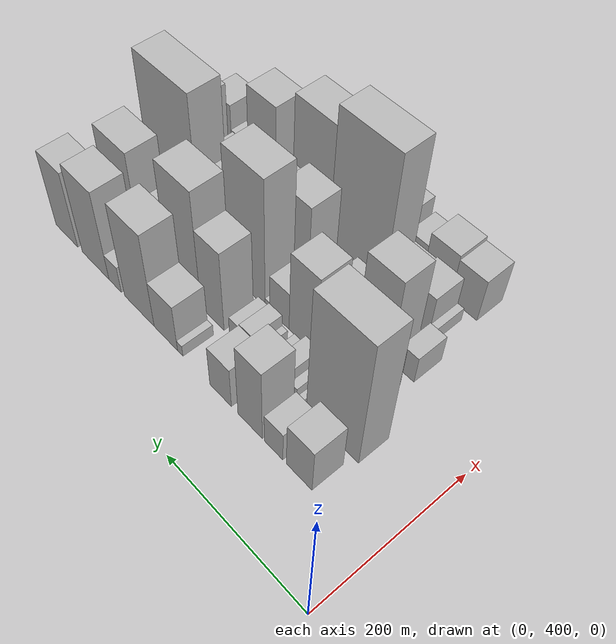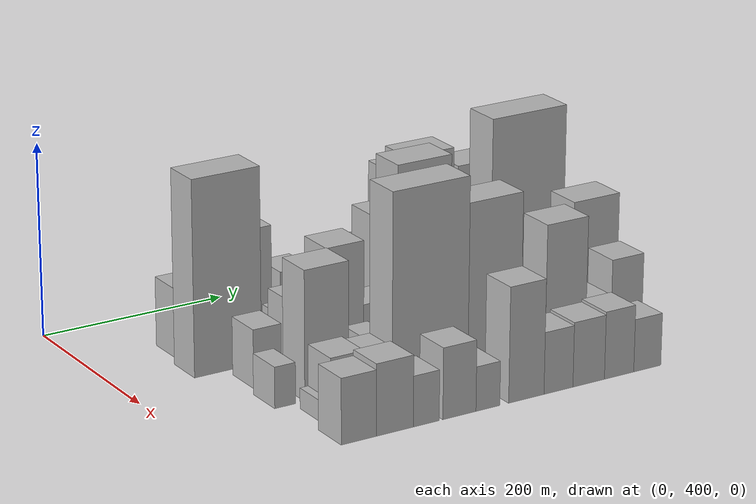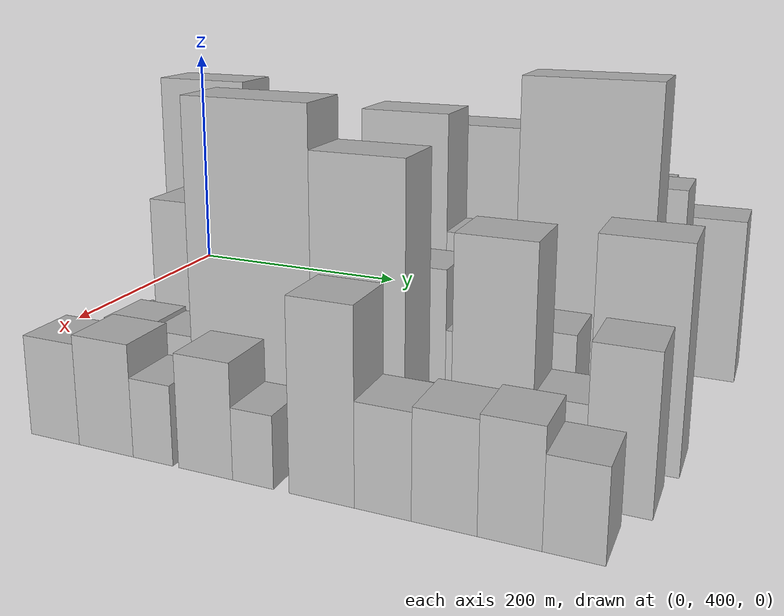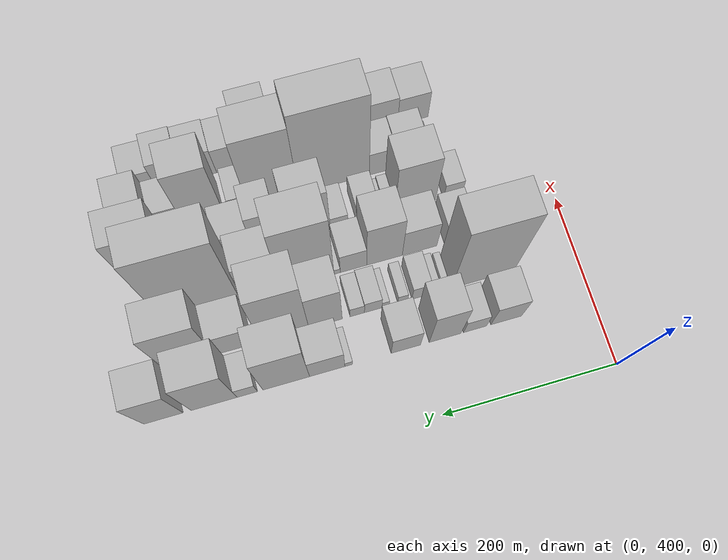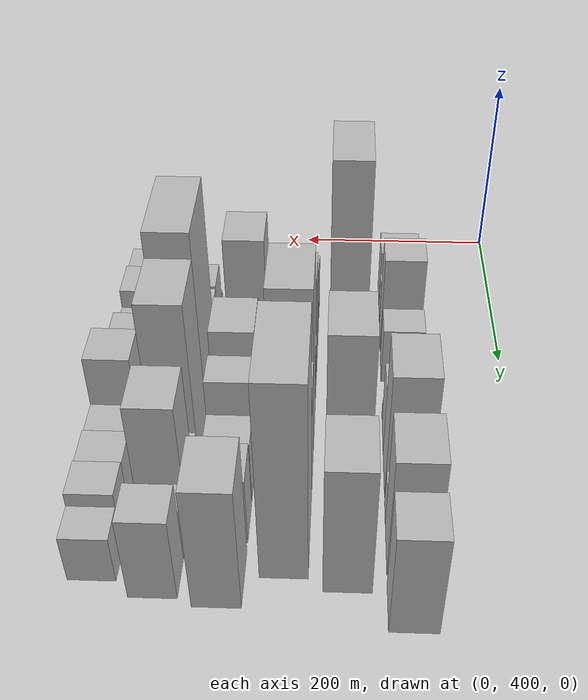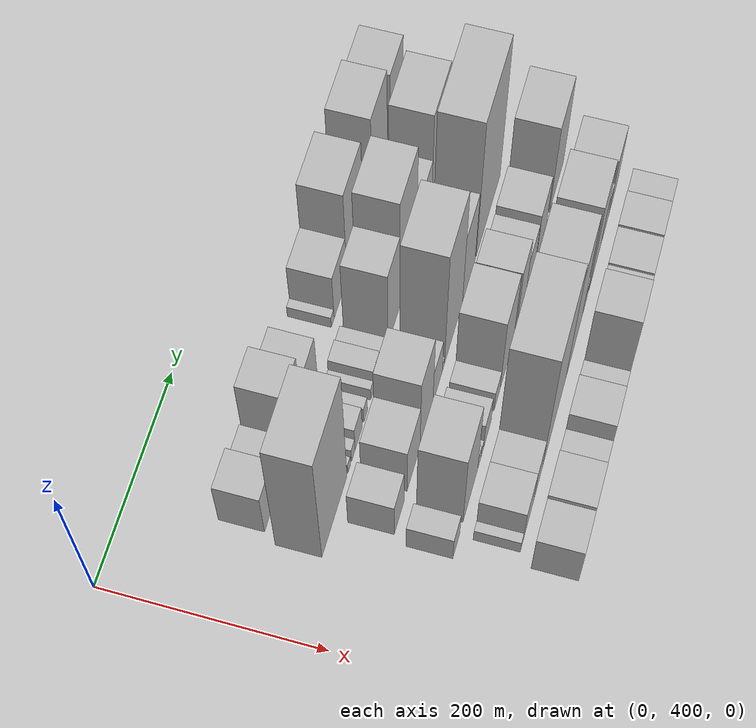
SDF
<sdf version="1.6">
 <world name="default">
  <model name="building_43">
   <static>1</static>
   <pose>100.0000 500.9659 0 0.000000 0.000000 0.000000</pose>
   <link name="link">
    <pose>0 0 36.00 0 0 0</pose>
    <collision name="collision"><geometry><box><size>40.0000 36.1020 72.0000</size></box></geometry></collision>
    <visual name="visual">
     <cast_shadows>0</cast_shadows>
     <geometry><box><size>40.0000 36.1020 72.0000</size></box></geometry>
     <material>
      <script>
       <uri>model://HANNAS_wall/materials/scripts</uri>
       <uri>model://HANNAS_wall/materials/textures</uri>
       <name>vrc/HANNAS_wall</name>
      </script>
     </material>
    </visual>
   </link>
  </model>
  <model name="building_44">
   <static>1</static>
   <pose>100.0000 537.4547 0 0.000000 0.000000 0.000000</pose>
   <link name="link">
    <pose>0 0 24.00 0 0 0</pose>
    <collision name="collision"><geometry><box><size>40.0000 26.8757 48.0000</size></box></geometry></collision>
    <visual name="visual">
     <cast_shadows>0</cast_shadows>
     <geometry><box><size>40.0000 26.8757 48.0000</size></box></geometry>
     <material>
      <script>
       <uri>model://HANNAS_wall/materials/scripts</uri>
       <uri>model://HANNAS_wall/materials/textures</uri>
       <name>vrc/HANNAS_wall</name>
      </script>
     </material>
    </visual>
   </link>
  </model>
  <model name="building_45">
   <static>1</static>
   <pose>100.0000 572.2795 0 0.000000 0.000000 0.000000</pose>
   <link name="link">
    <pose>0 0 58.50 0 0 0</pose>
    <collision name="collision"><geometry><box><size>40.0000 36.7738 117.0000</size></box></geometry></collision>
    <visual name="visual">
     <cast_shadows>0</cast_shadows>
     <geometry><box><size>40.0000 36.7738 117.0000</size></box></geometry>
     <material>
      <script>
       <uri>model://HANNAS_wall/materials/scripts</uri>
       <uri>model://HANNAS_wall/materials/textures</uri>
       <name>vrc/HANNAS_wall</name>
      </script>
     </material>
    </visual>
   </link>
  </model>
  <model name="building_46">
   <static>1</static>
   <pose>100.0000 617.5958 0 0.000000 0.000000 0.000000</pose>
   <link name="link">
    <pose>0 0 33.00 0 0 0</pose>
    <collision name="collision"><geometry><box><size>40.0000 33.8589 66.0000</size></box></geometry></collision>
    <visual name="visual">
     <cast_shadows>0</cast_shadows>
     <geometry><box><size>40.0000 33.8589 66.0000</size></box></geometry>
     <material>
      <script>
       <uri>model://HANNAS_wall/materials/scripts</uri>
       <uri>model://HANNAS_wall/materials/textures</uri>
       <name>vrc/HANNAS_wall</name>
      </script>
     </material>
    </visual>
   </link>
  </model>
  <model name="building_47">
   <static>1</static>
   <pose>100.0000 682.8618 0 0.000000 0.000000 0.000000</pose>
   <link name="link">
    <pose>0 0 9.00 0 0 0</pose>
    <collision name="collision"><geometry><box><size>40.0000 8.8910 18.0000</size></box></geometry></collision>
    <visual name="visual">
     <cast_shadows>0</cast_shadows>
     <geometry><box><size>40.0000 8.8910 18.0000</size></box></geometry>
     <material>
      <script>
       <uri>model://HANNAS_wall/materials/scripts</uri>
       <uri>model://HANNAS_wall/materials/textures</uri>
       <name>vrc/HANNAS_wall</name>
      </script>
     </material>
    </visual>
   </link>
  </model>
  <model name="building_48">
   <static>1</static>
   <pose>100.0000 707.3021 0 0.000000 0.000000 0.000000</pose>
   <link name="link">
    <pose>0 0 37.50 0 0 0</pose>
    <collision name="collision"><geometry><box><size>40.0000 39.9896 75.0000</size></box></geometry></collision>
    <visual name="visual">
     <cast_shadows>0</cast_shadows>
     <geometry><box><size>40.0000 39.9896 75.0000</size></box></geometry>
     <material>
      <script>
       <uri>model://HANNAS_wall/materials/scripts</uri>
       <uri>model://HANNAS_wall/materials/textures</uri>
       <name>vrc/HANNAS_wall</name>
      </script>
     </material>
    </visual>
   </link>
  </model>
  <model name="building_49">
   <static>1</static>
   <pose>100.0000 753.6165 0 0.000000 0.000000 0.000000</pose>
   <link name="link">
    <pose>0 0 73.50 0 0 0</pose>
    <collision name="collision"><geometry><box><size>40.0000 52.6392 147.0000</size></box></geometry></collision>
    <visual name="visual">
     <cast_shadows>0</cast_shadows>
     <geometry><box><size>40.0000 52.6392 147.0000</size></box></geometry>
     <material>
      <script>
       <uri>model://HANNAS_wall/materials/scripts</uri>
       <uri>model://HANNAS_wall/materials/textures</uri>
       <name>vrc/HANNAS_wall</name>
      </script>
     </material>
    </visual>
   </link>
  </model>
  <model name="building_50">
   <static>1</static>
   <pose>100.0000 797.3405 0 0.000000 0.000000 0.000000</pose>
   <link name="link">
    <pose>0 0 21.00 0 0 0</pose>
    <collision name="collision"><geometry><box><size>40.0000 22.8088 42.0000</size></box></geometry></collision>
    <visual name="visual">
     <cast_shadows>0</cast_shadows>
     <geometry><box><size>40.0000 22.8088 42.0000</size></box></geometry>
     <material>
      <script>
       <uri>model://HANNAS_wall/materials/scripts</uri>
       <uri>model://HANNAS_wall/materials/textures</uri>
       <name>vrc/HANNAS_wall</name>
      </script>
     </material>
    </visual>
   </link>
  </model>
  <model name="building_51">
   <static>1</static>
   <pose>100.0000 834.2517 0 0.000000 0.000000 0.000000</pose>
   <link name="link">
    <pose>0 0 69.00 0 0 0</pose>
    <collision name="collision"><geometry><box><size>40.0000 51.0136 138.0000</size></box></geometry></collision>
    <visual name="visual">
     <cast_shadows>0</cast_shadows>
     <geometry><box><size>40.0000 51.0136 138.0000</size></box></geometry>
     <material>
      <script>
       <uri>model://HANNAS_wall/materials/scripts</uri>
       <uri>model://HANNAS_wall/materials/textures</uri>
       <name>vrc/HANNAS_wall</name>
      </script>
     </material>
    </visual>
   </link>
  </model>
  <model name="building_52">
   <static>1</static>
   <pose>100.0000 890.4065 0 0.000000 0.000000 0.000000</pose>
   <link name="link">
    <pose>0 0 58.50 0 0 0</pose>
    <collision name="collision"><geometry><box><size>40.0000 43.2959 117.0000</size></box></geometry></collision>
    <visual name="visual">
     <cast_shadows>0</cast_shadows>
     <geometry><box><size>40.0000 43.2959 117.0000</size></box></geometry>
     <material>
      <script>
       <uri>model://HANNAS_wall/materials/scripts</uri>
       <uri>model://HANNAS_wall/materials/textures</uri>
       <name>vrc/HANNAS_wall</name>
      </script>
     </material>
    </visual>
   </link>
  </model>
  <model name="building_91">
   <static>1</static>
   <pose>152.0000 511.4278 0 0.000000 0.000000 0.000000</pose>
   <link name="link">
    <pose>0 0 100.50 0 0 0</pose>
    <collision name="collision"><geometry><box><size>40.0000 73.9934 201.0000</size></box></geometry></collision>
    <visual name="visual">
     <cast_shadows>0</cast_shadows>
     <geometry><box><size>40.0000 73.9934 201.0000</size></box></geometry>
     <material>
      <script>
       <uri>model://HANNAS_wall/materials/scripts</uri>
       <uri>model://HANNAS_wall/materials/textures</uri>
       <name>vrc/HANNAS_wall</name>
      </script>
     </material>
    </visual>
   </link>
  </model>
  <model name="building_92">
   <static>1</static>
   <pose>152.0000 555.3570 0 0.000000 0.000000 0.000000</pose>
   <link name="link">
    <pose>0 0 9.00 0 0 0</pose>
    <collision name="collision"><geometry><box><size>40.0000 7.8649 18.0000</size></box></geometry></collision>
    <visual name="visual">
     <cast_shadows>0</cast_shadows>
     <geometry><box><size>40.0000 7.8649 18.0000</size></box></geometry>
     <material>
      <script>
       <uri>model://HANNAS_wall/materials/scripts</uri>
       <uri>model://HANNAS_wall/materials/textures</uri>
       <name>vrc/HANNAS_wall</name>
      </script>
     </material>
    </visual>
   </link>
  </model>
  <model name="building_93">
   <static>1</static>
   <pose>152.0000 567.6566 0 0.000000 0.000000 0.000000</pose>
   <link name="link">
    <pose>0 0 12.00 0 0 0</pose>
    <collision name="collision"><geometry><box><size>40.0000 10.7344 24.0000</size></box></geometry></collision>
    <visual name="visual">
     <cast_shadows>0</cast_shadows>
     <geometry><box><size>40.0000 10.7344 24.0000</size></box></geometry>
     <material>
      <script>
       <uri>model://HANNAS_wall/materials/scripts</uri>
       <uri>model://HANNAS_wall/materials/textures</uri>
       <name>vrc/HANNAS_wall</name>
      </script>
     </material>
    </visual>
   </link>
  </model>
  <model name="building_94">
   <static>1</static>
   <pose>152.0000 583.8742 0 0.000000 0.000000 0.000000</pose>
   <link name="link">
    <pose>0 0 21.00 0 0 0</pose>
    <collision name="collision"><geometry><box><size>40.0000 21.7008 42.0000</size></box></geometry></collision>
    <visual name="visual">
     <cast_shadows>0</cast_shadows>
     <geometry><box><size>40.0000 21.7008 42.0000</size></box></geometry>
     <material>
      <script>
       <uri>model://HANNAS_wall/materials/scripts</uri>
       <uri>model://HANNAS_wall/materials/textures</uri>
       <name>vrc/HANNAS_wall</name>
      </script>
     </material>
    </visual>
   </link>
  </model>
  <model name="building_95">
   <static>1</static>
   <pose>152.0000 605.4654 0 0.000000 0.000000 0.000000</pose>
   <link name="link">
    <pose>0 0 13.50 0 0 0</pose>
    <collision name="collision"><geometry><box><size>40.0000 11.4816 27.0000</size></box></geometry></collision>
    <visual name="visual">
     <cast_shadows>0</cast_shadows>
     <geometry><box><size>40.0000 11.4816 27.0000</size></box></geometry>
     <material>
      <script>
       <uri>model://HANNAS_wall/materials/scripts</uri>
       <uri>model://HANNAS_wall/materials/textures</uri>
       <name>vrc/HANNAS_wall</name>
      </script>
     </material>
    </visual>
   </link>
  </model>
  <model name="building_96">
   <static>1</static>
   <pose>152.0000 625.4875 0 0.000000 0.000000 0.000000</pose>
   <link name="link">
    <pose>0 0 10.50 0 0 0</pose>
    <collision name="collision"><geometry><box><size>40.0000 8.5626 21.0000</size></box></geometry></collision>
    <visual name="visual">
     <cast_shadows>0</cast_shadows>
     <geometry><box><size>40.0000 8.5626 21.0000</size></box></geometry>
     <material>
      <script>
       <uri>model://HANNAS_wall/materials/scripts</uri>
       <uri>model://HANNAS_wall/materials/textures</uri>
       <name>vrc/HANNAS_wall</name>
      </script>
     </material>
    </visual>
   </link>
  </model>
  <model name="building_97">
   <static>1</static>
   <pose>152.0000 639.8967 0 0.000000 0.000000 0.000000</pose>
   <link name="link">
    <pose>0 0 19.50 0 0 0</pose>
    <collision name="collision"><geometry><box><size>40.0000 20.2559 39.0000</size></box></geometry></collision>
    <visual name="visual">
     <cast_shadows>0</cast_shadows>
     <geometry><box><size>40.0000 20.2559 39.0000</size></box></geometry>
     <material>
      <script>
       <uri>model://HANNAS_wall/materials/scripts</uri>
       <uri>model://HANNAS_wall/materials/textures</uri>
       <name>vrc/HANNAS_wall</name>
      </script>
     </material>
    </visual>
   </link>
  </model>
  <model name="building_98">
   <static>1</static>
   <pose>152.0000 658.3402 0 0.000000 0.000000 0.000000</pose>
   <link name="link">
    <pose>0 0 16.50 0 0 0</pose>
    <collision name="collision"><geometry><box><size>40.0000 16.6312 33.0000</size></box></geometry></collision>
    <visual name="visual">
     <cast_shadows>0</cast_shadows>
     <geometry><box><size>40.0000 16.6312 33.0000</size></box></geometry>
     <material>
      <script>
       <uri>model://HANNAS_wall/materials/scripts</uri>
       <uri>model://HANNAS_wall/materials/textures</uri>
       <name>vrc/HANNAS_wall</name>
      </script>
     </material>
    </visual>
   </link>
  </model>
  <model name="building_99">
   <static>1</static>
   <pose>152.0000 694.8591 0 0.000000 0.000000 0.000000</pose>
   <link name="link">
    <pose>0 0 63.00 0 0 0</pose>
    <collision name="collision"><geometry><box><size>40.0000 38.4065 126.0000</size></box></geometry></collision>
    <visual name="visual">
     <cast_shadows>0</cast_shadows>
     <geometry><box><size>40.0000 38.4065 126.0000</size></box></geometry>
     <material>
      <script>
       <uri>model://HANNAS_wall/materials/scripts</uri>
       <uri>model://HANNAS_wall/materials/textures</uri>
       <name>vrc/HANNAS_wall</name>
      </script>
     </material>
    </visual>
   </link>
  </model>
  <model name="building_100">
   <static>1</static>
   <pose>152.0000 741.5517 0 0.000000 0.000000 0.000000</pose>
   <link name="link">
    <pose>0 0 90.00 0 0 0</pose>
    <collision name="collision"><geometry><box><size>40.0000 54.9788 180.0000</size></box></geometry></collision>
    <visual name="visual">
     <cast_shadows>0</cast_shadows>
     <geometry><box><size>40.0000 54.9788 180.0000</size></box></geometry>
     <material>
      <script>
       <uri>model://HANNAS_wall/materials/scripts</uri>
       <uri>model://HANNAS_wall/materials/textures</uri>
       <name>vrc/HANNAS_wall</name>
      </script>
     </material>
    </visual>
   </link>
  </model>
  <model name="building_101">
   <static>1</static>
   <pose>152.0000 799.6591 0 0.000000 0.000000 0.000000</pose>
   <link name="link">
    <pose>0 0 37.50 0 0 0</pose>
    <collision name="collision"><geometry><box><size>40.0000 43.2359 75.0000</size></box></geometry></collision>
    <visual name="visual">
     <cast_shadows>0</cast_shadows>
     <geometry><box><size>40.0000 43.2359 75.0000</size></box></geometry>
     <material>
      <script>
       <uri>model://HANNAS_wall/materials/scripts</uri>
       <uri>model://HANNAS_wall/materials/textures</uri>
       <name>vrc/HANNAS_wall</name>
      </script>
     </material>
    </visual>
   </link>
  </model>
  <model name="building_102">
   <static>1</static>
   <pose>152.0000 849.3865 0 0.000000 0.000000 0.000000</pose>
   <link name="link">
    <pose>0 0 73.50 0 0 0</pose>
    <collision name="collision"><geometry><box><size>40.0000 56.2190 147.0000</size></box></geometry></collision>
    <visual name="visual">
     <cast_shadows>0</cast_shadows>
     <geometry><box><size>40.0000 56.2190 147.0000</size></box></geometry>
     <material>
      <script>
       <uri>model://HANNAS_wall/materials/scripts</uri>
       <uri>model://HANNAS_wall/materials/textures</uri>
       <name>vrc/HANNAS_wall</name>
      </script>
     </material>
    </visual>
   </link>
  </model>
  <model name="building_141">
   <static>1</static>
   <pose>204.0000 524.8985 0 0.000000 0.000000 0.000000</pose>
   <link name="link">
    <pose>0 0 30.00 0 0 0</pose>
    <collision name="collision"><geometry><box><size>40.0000 30.7688 60.0000</size></box></geometry></collision>
    <visual name="visual">
     <cast_shadows>0</cast_shadows>
     <geometry><box><size>40.0000 30.7688 60.0000</size></box></geometry>
     <material>
      <script>
       <uri>model://HANNAS_wall/materials/scripts</uri>
       <uri>model://HANNAS_wall/materials/textures</uri>
       <name>vrc/HANNAS_wall</name>
      </script>
     </material>
    </visual>
   </link>
  </model>
  <model name="building_142">
   <static>1</static>
   <pose>204.0000 569.8486 0 0.000000 0.000000 0.000000</pose>
   <link name="link">
    <pose>0 0 40.50 0 0 0</pose>
    <collision name="collision"><geometry><box><size>40.0000 41.1313 81.0000</size></box></geometry></collision>
    <visual name="visual">
     <cast_shadows>0</cast_shadows>
     <geometry><box><size>40.0000 41.1313 81.0000</size></box></geometry>
     <material>
      <script>
       <uri>model://HANNAS_wall/materials/scripts</uri>
       <uri>model://HANNAS_wall/materials/textures</uri>
       <name>vrc/HANNAS_wall</name>
      </script>
     </material>
    </visual>
   </link>
  </model>
  <model name="building_143">
   <static>1</static>
   <pose>204.0000 611.4502 0 0.000000 0.000000 0.000000</pose>
   <link name="link">
    <pose>0 0 63.00 0 0 0</pose>
    <collision name="collision"><geometry><box><size>40.0000 42.0719 126.0000</size></box></geometry></collision>
    <visual name="visual">
     <cast_shadows>0</cast_shadows>
     <geometry><box><size>40.0000 42.0719 126.0000</size></box></geometry>
     <material>
      <script>
       <uri>model://HANNAS_wall/materials/scripts</uri>
       <uri>model://HANNAS_wall/materials/textures</uri>
       <name>vrc/HANNAS_wall</name>
      </script>
     </material>
    </visual>
   </link>
  </model>
  <model name="building_144">
   <static>1</static>
   <pose>204.0000 647.9109 0 0.000000 0.000000 0.000000</pose>
   <link name="link">
    <pose>0 0 30.00 0 0 0</pose>
    <collision name="collision"><geometry><box><size>40.0000 30.8495 60.0000</size></box></geometry></collision>
    <visual name="visual">
     <cast_shadows>0</cast_shadows>
     <geometry><box><size>40.0000 30.8495 60.0000</size></box></geometry>
     <material>
      <script>
       <uri>model://HANNAS_wall/materials/scripts</uri>
       <uri>model://HANNAS_wall/materials/textures</uri>
       <name>vrc/HANNAS_wall</name>
      </script>
     </material>
    </visual>
   </link>
  </model>
  <model name="building_145">
   <static>1</static>
   <pose>204.0000 666.9943 0 0.000000 0.000000 0.000000</pose>
   <link name="link">
    <pose>0 0 7.50 0 0 0</pose>
    <collision name="collision"><geometry><box><size>40.0000 7.3175 15.0000</size></box></geometry></collision>
    <visual name="visual">
     <cast_shadows>0</cast_shadows>
     <geometry><box><size>40.0000 7.3175 15.0000</size></box></geometry>
     <material>
      <script>
       <uri>model://HANNAS_wall/materials/scripts</uri>
       <uri>model://HANNAS_wall/materials/textures</uri>
       <name>vrc/HANNAS_wall</name>
      </script>
     </material>
    </visual>
   </link>
  </model>
  <model name="building_146">
   <static>1</static>
   <pose>204.0000 701.2882 0 0.000000 0.000000 0.000000</pose>
   <link name="link">
    <pose>0 0 97.50 0 0 0</pose>
    <collision name="collision"><geometry><box><size>40.0000 61.2704 195.0000</size></box></geometry></collision>
    <visual name="visual">
     <cast_shadows>0</cast_shadows>
     <geometry><box><size>40.0000 61.2704 195.0000</size></box></geometry>
     <material>
      <script>
       <uri>model://HANNAS_wall/materials/scripts</uri>
       <uri>model://HANNAS_wall/materials/textures</uri>
       <name>vrc/HANNAS_wall</name>
      </script>
     </material>
    </visual>
   </link>
  </model>
  <model name="building_147">
   <static>1</static>
   <pose>204.0000 754.1206 0 0.000000 0.000000 0.000000</pose>
   <link name="link">
    <pose>0 0 58.50 0 0 0</pose>
    <collision name="collision"><geometry><box><size>40.0000 44.3943 117.0000</size></box></geometry></collision>
    <visual name="visual">
     <cast_shadows>0</cast_shadows>
     <geometry><box><size>40.0000 44.3943 117.0000</size></box></geometry>
     <material>
      <script>
       <uri>model://HANNAS_wall/materials/scripts</uri>
       <uri>model://HANNAS_wall/materials/textures</uri>
       <name>vrc/HANNAS_wall</name>
      </script>
     </material>
    </visual>
   </link>
  </model>
  <model name="building_148">
   <static>1</static>
   <pose>204.0000 822.5968 0 0.000000 0.000000 0.000000</pose>
   <link name="link">
    <pose>0 0 111.00 0 0 0</pose>
    <collision name="collision"><geometry><box><size>40.0000 86.5582 222.0000</size></box></geometry></collision>
    <visual name="visual">
     <cast_shadows>0</cast_shadows>
     <geometry><box><size>40.0000 86.5582 222.0000</size></box></geometry>
     <material>
      <script>
       <uri>model://HANNAS_wall/materials/scripts</uri>
       <uri>model://HANNAS_wall/materials/textures</uri>
       <name>vrc/HANNAS_wall</name>
      </script>
     </material>
    </visual>
   </link>
  </model>
  <model name="building_186">
   <static>1</static>
   <pose>256.0000 513.5985 0 0.000000 0.000000 0.000000</pose>
   <link name="link">
    <pose>0 0 21.00 0 0 0</pose>
    <collision name="collision"><geometry><box><size>40.0000 22.6300 42.0000</size></box></geometry></collision>
    <visual name="visual">
     <cast_shadows>0</cast_shadows>
     <geometry><box><size>40.0000 22.6300 42.0000</size></box></geometry>
     <material>
      <script>
       <uri>model://HANNAS_wall/materials/scripts</uri>
       <uri>model://HANNAS_wall/materials/textures</uri>
       <name>vrc/HANNAS_wall</name>
      </script>
     </material>
    </visual>
   </link>
  </model>
  <model name="building_187">
   <static>1</static>
   <pose>256.0000 559.2160 0 0.000000 0.000000 0.000000</pose>
   <link name="link">
    <pose>0 0 66.00 0 0 0</pose>
    <collision name="collision"><geometry><box><size>40.0000 48.6050 132.0000</size></box></geometry></collision>
    <visual name="visual">
     <cast_shadows>0</cast_shadows>
     <geometry><box><size>40.0000 48.6050 132.0000</size></box></geometry>
     <material>
      <script>
       <uri>model://HANNAS_wall/materials/scripts</uri>
       <uri>model://HANNAS_wall/materials/textures</uri>
       <name>vrc/HANNAS_wall</name>
      </script>
     </material>
    </visual>
   </link>
  </model>
  <model name="building_188">
   <static>1</static>
   <pose>256.0000 589.5035 0 0.000000 0.000000 0.000000</pose>
   <link name="link">
    <pose>0 0 12.00 0 0 0</pose>
    <collision name="collision"><geometry><box><size>40.0000 11.9699 24.0000</size></box></geometry></collision>
    <visual name="visual">
     <cast_shadows>0</cast_shadows>
     <geometry><box><size>40.0000 11.9699 24.0000</size></box></geometry>
     <material>
      <script>
       <uri>model://HANNAS_wall/materials/scripts</uri>
       <uri>model://HANNAS_wall/materials/textures</uri>
       <name>vrc/HANNAS_wall</name>
      </script>
     </material>
    </visual>
   </link>
  </model>
  <model name="building_189">
   <static>1</static>
   <pose>256.0000 599.4248 0 0.000000 0.000000 0.000000</pose>
   <link name="link">
    <pose>0 0 9.00 0 0 0</pose>
    <collision name="collision"><geometry><box><size>40.0000 7.8727 18.0000</size></box></geometry></collision>
    <visual name="visual">
     <cast_shadows>0</cast_shadows>
     <geometry><box><size>40.0000 7.8727 18.0000</size></box></geometry>
     <material>
      <script>
       <uri>model://HANNAS_wall/materials/scripts</uri>
       <uri>model://HANNAS_wall/materials/textures</uri>
       <name>vrc/HANNAS_wall</name>
      </script>
     </material>
    </visual>
   </link>
  </model>
  <model name="building_190">
   <static>1</static>
   <pose>256.0000 616.3459 0 0.000000 0.000000 0.000000</pose>
   <link name="link">
    <pose>0 0 24.00 0 0 0</pose>
    <collision name="collision"><geometry><box><size>40.0000 25.9695 48.0000</size></box></geometry></collision>
    <visual name="visual">
     <cast_shadows>0</cast_shadows>
     <geometry><box><size>40.0000 25.9695 48.0000</size></box></geometry>
     <material>
      <script>
       <uri>model://HANNAS_wall/materials/scripts</uri>
       <uri>model://HANNAS_wall/materials/textures</uri>
       <name>vrc/HANNAS_wall</name>
      </script>
     </material>
    </visual>
   </link>
  </model>
  <model name="building_191">
   <static>1</static>
   <pose>256.0000 649.8906 0 0.000000 0.000000 0.000000</pose>
   <link name="link">
    <pose>0 0 18.00 0 0 0</pose>
    <collision name="collision"><geometry><box><size>40.0000 21.1199 36.0000</size></box></geometry></collision>
    <visual name="visual">
     <cast_shadows>0</cast_shadows>
     <geometry><box><size>40.0000 21.1199 36.0000</size></box></geometry>
     <material>
      <script>
       <uri>model://HANNAS_wall/materials/scripts</uri>
       <uri>model://HANNAS_wall/materials/textures</uri>
       <name>vrc/HANNAS_wall</name>
      </script>
     </material>
    </visual>
   </link>
  </model>
  <model name="building_192">
   <static>1</static>
   <pose>256.0000 684.0607 0 0.000000 0.000000 0.000000</pose>
   <link name="link">
    <pose>0 0 63.00 0 0 0</pose>
    <collision name="collision"><geometry><box><size>40.0000 47.2203 126.0000</size></box></geometry></collision>
    <visual name="visual">
     <cast_shadows>0</cast_shadows>
     <geometry><box><size>40.0000 47.2203 126.0000</size></box></geometry>
     <material>
      <script>
       <uri>model://HANNAS_wall/materials/scripts</uri>
       <uri>model://HANNAS_wall/materials/textures</uri>
       <name>vrc/HANNAS_wall</name>
      </script>
     </material>
    </visual>
   </link>
  </model>
  <model name="building_193">
   <static>1</static>
   <pose>256.0000 734.2272 0 0.000000 0.000000 0.000000</pose>
   <link name="link">
    <pose>0 0 54.00 0 0 0</pose>
    <collision name="collision"><geometry><box><size>40.0000 33.1126 108.0000</size></box></geometry></collision>
    <visual name="visual">
     <cast_shadows>0</cast_shadows>
     <geometry><box><size>40.0000 33.1126 108.0000</size></box></geometry>
     <material>
      <script>
       <uri>model://HANNAS_wall/materials/scripts</uri>
       <uri>model://HANNAS_wall/materials/textures</uri>
       <name>vrc/HANNAS_wall</name>
      </script>
     </material>
    </visual>
   </link>
  </model>
  <model name="building_194">
   <static>1</static>
   <pose>256.0000 769.3678 0 0.000000 0.000000 0.000000</pose>
   <link name="link">
    <pose>0 0 34.50 0 0 0</pose>
    <collision name="collision"><geometry><box><size>40.0000 37.1687 69.0000</size></box></geometry></collision>
    <visual name="visual">
     <cast_shadows>0</cast_shadows>
     <geometry><box><size>40.0000 37.1687 69.0000</size></box></geometry>
     <material>
      <script>
       <uri>model://HANNAS_wall/materials/scripts</uri>
       <uri>model://HANNAS_wall/materials/textures</uri>
       <name>vrc/HANNAS_wall</name>
      </script>
     </material>
    </visual>
   </link>
  </model>
  <model name="building_195">
   <static>1</static>
   <pose>256.0000 811.4369 0 0.000000 0.000000 0.000000</pose>
   <link name="link">
    <pose>0 0 39.00 0 0 0</pose>
    <collision name="collision"><geometry><box><size>40.0000 40.9695 78.0000</size></box></geometry></collision>
    <visual name="visual">
     <cast_shadows>0</cast_shadows>
     <geometry><box><size>40.0000 40.9695 78.0000</size></box></geometry>
     <material>
      <script>
       <uri>model://HANNAS_wall/materials/scripts</uri>
       <uri>model://HANNAS_wall/materials/textures</uri>
       <name>vrc/HANNAS_wall</name>
      </script>
     </material>
    </visual>
   </link>
  </model>
  <model name="building_196">
   <static>1</static>
   <pose>256.0000 867.8552 0 0.000000 0.000000 0.000000</pose>
   <link name="link">
    <pose>0 0 70.50 0 0 0</pose>
    <collision name="collision"><geometry><box><size>40.0000 53.8672 141.0000</size></box></geometry></collision>
    <visual name="visual">
     <cast_shadows>0</cast_shadows>
     <geometry><box><size>40.0000 53.8672 141.0000</size></box></geometry>
     <material>
      <script>
       <uri>model://HANNAS_wall/materials/scripts</uri>
       <uri>model://HANNAS_wall/materials/textures</uri>
       <name>vrc/HANNAS_wall</name>
      </script>
     </material>
    </visual>
   </link>
  </model>
  <model name="building_241">
   <static>1</static>
   <pose>308.0000 527.1233 0 0.000000 0.000000 0.000000</pose>
   <link name="link">
    <pose>0 0 10.50 0 0 0</pose>
    <collision name="collision"><geometry><box><size>40.0000 9.0381 21.0000</size></box></geometry></collision>
    <visual name="visual">
     <cast_shadows>0</cast_shadows>
     <geometry><box><size>40.0000 9.0381 21.0000</size></box></geometry>
     <material>
      <script>
       <uri>model://HANNAS_wall/materials/scripts</uri>
       <uri>model://HANNAS_wall/materials/textures</uri>
       <name>vrc/HANNAS_wall</name>
      </script>
     </material>
    </visual>
   </link>
  </model>
  <model name="building_242">
   <static>1</static>
   <pose>308.0000 550.0235 0 0.000000 0.000000 0.000000</pose>
   <link name="link">
    <pose>0 0 31.50 0 0 0</pose>
    <collision name="collision"><geometry><box><size>40.0000 36.7624 63.0000</size></box></geometry></collision>
    <visual name="visual">
     <cast_shadows>0</cast_shadows>
     <geometry><box><size>40.0000 36.7624 63.0000</size></box></geometry>
     <material>
      <script>
       <uri>model://HANNAS_wall/materials/scripts</uri>
       <uri>model://HANNAS_wall/materials/textures</uri>
       <name>vrc/HANNAS_wall</name>
      </script>
     </material>
    </visual>
   </link>
  </model>
  <model name="building_243">
   <static>1</static>
   <pose>308.0000 583.7509 0 0.000000 0.000000 0.000000</pose>
   <link name="link">
    <pose>0 0 30.00 0 0 0</pose>
    <collision name="collision"><geometry><box><size>40.0000 30.6923 60.0000</size></box></geometry></collision>
    <visual name="visual">
     <cast_shadows>0</cast_shadows>
     <geometry><box><size>40.0000 30.6923 60.0000</size></box></geometry>
     <material>
      <script>
       <uri>model://HANNAS_wall/materials/scripts</uri>
       <uri>model://HANNAS_wall/materials/textures</uri>
       <name>vrc/HANNAS_wall</name>
      </script>
     </material>
    </visual>
   </link>
  </model>
  <model name="building_244">
   <static>1</static>
   <pose>308.0000 641.5934 0 0.000000 0.000000 0.000000</pose>
   <link name="link">
    <pose>0 0 106.50 0 0 0</pose>
    <collision name="collision"><geometry><box><size>40.0000 84.9926 213.0000</size></box></geometry></collision>
    <visual name="visual">
     <cast_shadows>0</cast_shadows>
     <geometry><box><size>40.0000 84.9926 213.0000</size></box></geometry>
     <material>
      <script>
       <uri>model://HANNAS_wall/materials/scripts</uri>
       <uri>model://HANNAS_wall/materials/textures</uri>
       <name>vrc/HANNAS_wall</name>
      </script>
     </material>
    </visual>
   </link>
  </model>
  <model name="building_245">
   <static>1</static>
   <pose>308.0000 714.2807 0 0.000000 0.000000 0.000000</pose>
   <link name="link">
    <pose>0 0 93.00 0 0 0</pose>
    <collision name="collision"><geometry><box><size>40.0000 60.3820 186.0000</size></box></geometry></collision>
    <visual name="visual">
     <cast_shadows>0</cast_shadows>
     <geometry><box><size>40.0000 60.3820 186.0000</size></box></geometry>
     <material>
      <script>
       <uri>model://HANNAS_wall/materials/scripts</uri>
       <uri>model://HANNAS_wall/materials/textures</uri>
       <name>vrc/HANNAS_wall</name>
      </script>
     </material>
    </visual>
   </link>
  </model>
  <model name="building_246">
   <static>1</static>
   <pose>308.0000 755.2159 0 0.000000 0.000000 0.000000</pose>
   <link name="link">
    <pose>0 0 19.50 0 0 0</pose>
    <collision name="collision"><geometry><box><size>40.0000 21.4885 39.0000</size></box></geometry></collision>
    <visual name="visual">
     <cast_shadows>0</cast_shadows>
     <geometry><box><size>40.0000 21.4885 39.0000</size></box></geometry>
     <material>
      <script>
       <uri>model://HANNAS_wall/materials/scripts</uri>
       <uri>model://HANNAS_wall/materials/textures</uri>
       <name>vrc/HANNAS_wall</name>
      </script>
     </material>
    </visual>
   </link>
  </model>
  <model name="building_247">
   <static>1</static>
   <pose>308.0000 796.7059 0 0.000000 0.000000 0.000000</pose>
   <link name="link">
    <pose>0 0 73.50 0 0 0</pose>
    <collision name="collision"><geometry><box><size>40.0000 47.4915 147.0000</size></box></geometry></collision>
    <visual name="visual">
     <cast_shadows>0</cast_shadows>
     <geometry><box><size>40.0000 47.4915 147.0000</size></box></geometry>
     <material>
      <script>
       <uri>model://HANNAS_wall/materials/scripts</uri>
       <uri>model://HANNAS_wall/materials/textures</uri>
       <name>vrc/HANNAS_wall</name>
      </script>
     </material>
    </visual>
   </link>
  </model>
  <model name="building_248">
   <static>1</static>
   <pose>308.0000 835.4642 0 0.000000 0.000000 0.000000</pose>
   <link name="link">
    <pose>0 0 30.00 0 0 0</pose>
    <collision name="collision"><geometry><box><size>40.0000 30.0252 60.0000</size></box></geometry></collision>
    <visual name="visual">
     <cast_shadows>0</cast_shadows>
     <geometry><box><size>40.0000 30.0252 60.0000</size></box></geometry>
     <material>
      <script>
       <uri>model://HANNAS_wall/materials/scripts</uri>
       <uri>model://HANNAS_wall/materials/textures</uri>
       <name>vrc/HANNAS_wall</name>
      </script>
     </material>
    </visual>
   </link>
  </model>
  <model name="building_249">
   <static>1</static>
   <pose>308.0000 869.1329 0 0.000000 0.000000 0.000000</pose>
   <link name="link">
    <pose>0 0 48.00 0 0 0</pose>
    <collision name="collision"><geometry><box><size>40.0000 37.3121 96.0000</size></box></geometry></collision>
    <visual name="visual">
     <cast_shadows>0</cast_shadows>
     <geometry><box><size>40.0000 37.3121 96.0000</size></box></geometry>
     <material>
      <script>
       <uri>model://HANNAS_wall/materials/scripts</uri>
       <uri>model://HANNAS_wall/materials/textures</uri>
       <name>vrc/HANNAS_wall</name>
      </script>
     </material>
    </visual>
   </link>
  </model>
  <model name="building_291">
   <static>1</static>
   <pose>360.0000 530.2545 0 0.000000 0.000000 0.000000</pose>
   <link name="link">
    <pose>0 0 33.00 0 0 0</pose>
    <collision name="collision"><geometry><box><size>40.0000 37.6896 66.0000</size></box></geometry></collision>
    <visual name="visual">
     <cast_shadows>0</cast_shadows>
     <geometry><box><size>40.0000 37.6896 66.0000</size></box></geometry>
     <material>
      <script>
       <uri>model://HANNAS_wall/materials/scripts</uri>
       <uri>model://HANNAS_wall/materials/textures</uri>
       <name>vrc/HANNAS_wall</name>
      </script>
     </material>
    </visual>
   </link>
  </model>
  <model name="building_292">
   <static>1</static>
   <pose>360.0000 569.3147 0 0.000000 0.000000 0.000000</pose>
   <link name="link">
    <pose>0 0 36.00 0 0 0</pose>
    <collision name="collision"><geometry><box><size>40.0000 40.4309 72.0000</size></box></geometry></collision>
    <visual name="visual">
     <cast_shadows>0</cast_shadows>
     <geometry><box><size>40.0000 40.4309 72.0000</size></box></geometry>
     <material>
      <script>
       <uri>model://HANNAS_wall/materials/scripts</uri>
       <uri>model://HANNAS_wall/materials/textures</uri>
       <name>vrc/HANNAS_wall</name>
      </script>
     </material>
    </visual>
   </link>
  </model>
  <model name="building_293">
   <static>1</static>
   <pose>360.0000 603.7656 0 0.000000 0.000000 0.000000</pose>
   <link name="link">
    <pose>0 0 25.50 0 0 0</pose>
    <collision name="collision"><geometry><box><size>40.0000 28.4710 51.0000</size></box></geometry></collision>
    <visual name="visual">
     <cast_shadows>0</cast_shadows>
     <geometry><box><size>40.0000 28.4710 51.0000</size></box></geometry>
     <material>
      <script>
       <uri>model://HANNAS_wall/materials/scripts</uri>
       <uri>model://HANNAS_wall/materials/textures</uri>
       <name>vrc/HANNAS_wall</name>
      </script>
     </material>
    </visual>
   </link>
  </model>
  <model name="building_294">
   <static>1</static>
   <pose>360.0000 640.4725 0 0.000000 0.000000 0.000000</pose>
   <link name="link">
    <pose>0 0 36.00 0 0 0</pose>
    <collision name="collision"><geometry><box><size>40.0000 36.9429 72.0000</size></box></geometry></collision>
    <visual name="visual">
     <cast_shadows>0</cast_shadows>
     <geometry><box><size>40.0000 36.9429 72.0000</size></box></geometry>
     <material>
      <script>
       <uri>model://HANNAS_wall/materials/scripts</uri>
       <uri>model://HANNAS_wall/materials/textures</uri>
       <name>vrc/HANNAS_wall</name>
      </script>
     </material>
    </visual>
   </link>
  </model>
  <model name="building_295">
   <static>1</static>
   <pose>360.0000 672.3618 0 0.000000 0.000000 0.000000</pose>
   <link name="link">
    <pose>0 0 22.50 0 0 0</pose>
    <collision name="collision"><geometry><box><size>40.0000 26.8357 45.0000</size></box></geometry></collision>
    <visual name="visual">
     <cast_shadows>0</cast_shadows>
     <geometry><box><size>40.0000 26.8357 45.0000</size></box></geometry>
     <material>
      <script>
       <uri>model://HANNAS_wall/materials/scripts</uri>
       <uri>model://HANNAS_wall/materials/textures</uri>
       <name>vrc/HANNAS_wall</name>
      </script>
     </material>
    </visual>
   </link>
  </model>
  <model name="building_296">
   <static>1</static>
   <pose>360.0000 715.9449 0 0.000000 0.000000 0.000000</pose>
   <link name="link">
    <pose>0 0 58.50 0 0 0</pose>
    <collision name="collision"><geometry><box><size>40.0000 40.3304 117.0000</size></box></geometry></collision>
    <visual name="visual">
     <cast_shadows>0</cast_shadows>
     <geometry><box><size>40.0000 40.3304 117.0000</size></box></geometry>
     <material>
      <script>
       <uri>model://HANNAS_wall/materials/scripts</uri>
       <uri>model://HANNAS_wall/materials/textures</uri>
       <name>vrc/HANNAS_wall</name>
      </script>
     </material>
    </visual>
   </link>
  </model>
  <model name="building_297">
   <static>1</static>
   <pose>360.0000 752.8148 0 0.000000 0.000000 0.000000</pose>
   <link name="link">
    <pose>0 0 31.50 0 0 0</pose>
    <collision name="collision"><geometry><box><size>40.0000 33.4095 63.0000</size></box></geometry></collision>
    <visual name="visual">
     <cast_shadows>0</cast_shadows>
     <geometry><box><size>40.0000 33.4095 63.0000</size></box></geometry>
     <material>
      <script>
       <uri>model://HANNAS_wall/materials/scripts</uri>
       <uri>model://HANNAS_wall/materials/textures</uri>
       <name>vrc/HANNAS_wall</name>
      </script>
     </material>
    </visual>
   </link>
  </model>
  <model name="building_298">
   <static>1</static>
   <pose>360.0000 787.9050 0 0.000000 0.000000 0.000000</pose>
   <link name="link">
    <pose>0 0 33.00 0 0 0</pose>
    <collision name="collision"><geometry><box><size>40.0000 36.7709 66.0000</size></box></geometry></collision>
    <visual name="visual">
     <cast_shadows>0</cast_shadows>
     <geometry><box><size>40.0000 36.7709 66.0000</size></box></geometry>
     <material>
      <script>
       <uri>model://HANNAS_wall/materials/scripts</uri>
       <uri>model://HANNAS_wall/materials/textures</uri>
       <name>vrc/HANNAS_wall</name>
      </script>
     </material>
    </visual>
   </link>
  </model>
  <model name="building_299">
   <static>1</static>
   <pose>360.0000 823.5811 0 0.000000 0.000000 0.000000</pose>
   <link name="link">
    <pose>0 0 34.50 0 0 0</pose>
    <collision name="collision"><geometry><box><size>40.0000 34.5813 69.0000</size></box></geometry></collision>
    <visual name="visual">
     <cast_shadows>0</cast_shadows>
     <geometry><box><size>40.0000 34.5813 69.0000</size></box></geometry>
     <material>
      <script>
       <uri>model://HANNAS_wall/materials/scripts</uri>
       <uri>model://HANNAS_wall/materials/textures</uri>
       <name>vrc/HANNAS_wall</name>
      </script>
     </material>
    </visual>
   </link>
  </model>
  <model name="building_300">
   <static>1</static>
   <pose>360.0000 856.9938 0 0.000000 0.000000 0.000000</pose>
   <link name="link">
    <pose>0 0 27.00 0 0 0</pose>
    <collision name="collision"><geometry><box><size>40.0000 32.2441 54.0000</size></box></geometry></collision>
    <visual name="visual">
     <cast_shadows>0</cast_shadows>
     <geometry><box><size>40.0000 32.2441 54.0000</size></box></geometry>
     <material>
      <script>
       <uri>model://HANNAS_wall/materials/scripts</uri>
       <uri>model://HANNAS_wall/materials/textures</uri>
       <name>vrc/HANNAS_wall</name>
      </script>
     </material>
    </visual>
   </link>
  </model>
 </world>
</sdf>
